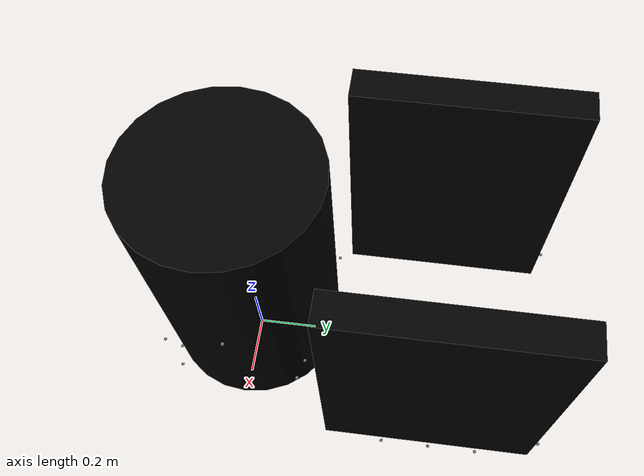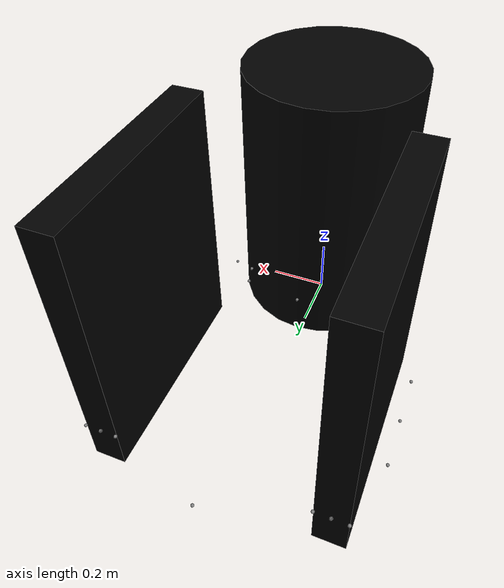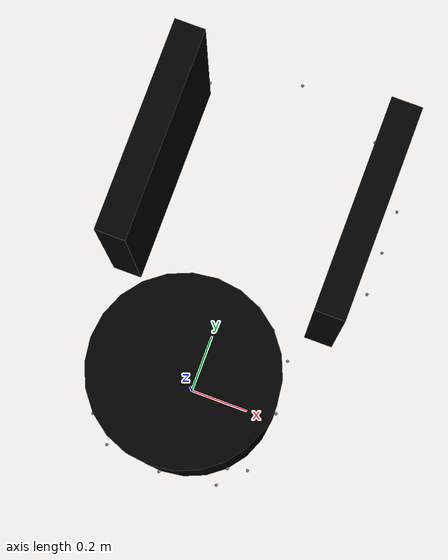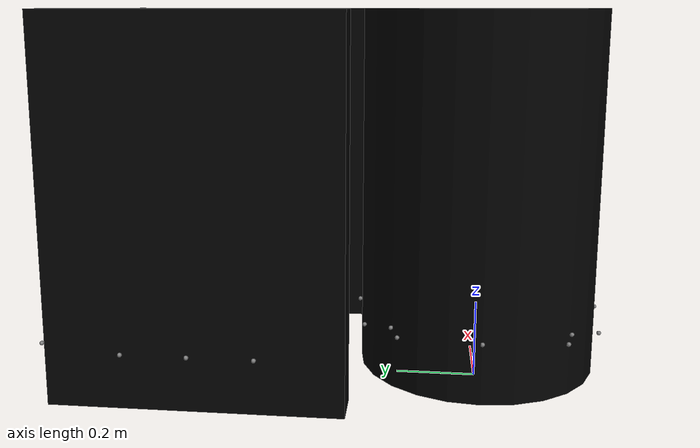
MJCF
<mujoco model="pr2_model">
    <worldbody name="base">
        <body name="pr2" pos="0 0 0.5">
            <joint axis="1 0 0" name="robot_x" type="slide" pos="0 0 0" />
            <joint axis="0 1 0" name="robot_y" type="slide" pos="0 0 0" />
            <site name="body_1" pos="0.3 0 0" zaxis="1 0 0" />
            <site name="body_2" pos="0.276 0.195 -0.3" zaxis="0.924 0.0585 0" />
            <site name="body_3" pos="0.212 0.212 -0.3" zaxis="0.707 0.707 0" />
            <site name="body_4" pos="0.195 0.276 -0.3" zaxis="0.0585 0.924 0" />

            <site name="body_5" pos="0 0.3 -0.3" zaxis="0 1 0"/>
            <site name="body_6" pos="-0.195 0.276 -0.30" zaxis="-0.0585 0.924 0"/>
            <site name="body_7" pos="-0.212 0.212 -0.30" zaxis="-0.707 0.707 0"/>
            <site name="body_8" pos="-0.276 0.195 -0.30" zaxis="-0.924 0.0585 0"/>

            <site name="body_9" pos="-0.3 0 -0.3" zaxis="-1 0 0"/>
            <site name="body_10" pos="-0.276 -0.195 -0.30" zaxis="-0.924 -0.0585 0"/>
            <site name="body_11" pos="-0.212 -0.212 -0.30" zaxis="-0.707 -0.707 0"/>
            <site name="body_12" pos="-0.195 -0.276 -0.30" zaxis="-0.0585 -0.924 0"/>

            <site name="body_13" pos="0 -0.3 -0.3" zaxis="0 -1 0"/>
            <site name="body_14" pos="0.195 -0.276 -0.3" zaxis="0.0585 -0.924 0"/>
            <site name="body_15" pos="0.212 -0.212 -0.3" zaxis="0.707 -0.707 0"/>
            <site name="body_16" pos="0.276 -0.195 -0.3" zaxis="0.924 -0.0585 0"/>

            <site name="body_17" pos="0 1.1 -0.3" zaxis="0 1 0"/>

            <geom name="pr2" type="cylinder" size="0.295 0.45" mass="5" rgba="0 0 0 1"/>
            <joint axis="0 0 1" name="robot_theta" type="hinge" pos="0 0 0" limited="false"/>
            <body name="right_finger" pos="-0.35 0.65 0" euler="0 0 -0.05">
                <site name="rf_1" pos="0. 0.35 -0.3" zaxis="0 1 0"/>
                <site name="rf_2" pos="-0.05 0.35 -0.3" zaxis="-1 1 0"/>
                <site name="rf_3" pos="-0.1 0.15 -0.3" zaxis="-1 0 0"/>
                <site name="rf_4" pos="-0.1 -0.15 -0.3" zaxis="-1 0 0"/>
                <site name="rf_5" pos="0.05 0.35 -0.3" zaxis="1 1 0"/>
                <site name="rf_6" pos="-0.1 0 -0.3" zaxis="-1 0 0"/>
                <site name="rf_7" pos="0 0.35 -0.3" zaxis="1 2 0"/>
                <joint name="right_finger_joint" axis="1 0 0" limited="true" range="-0.1 0.1" type="slide" solreflimit="0.02 0.25" solimplimit="0.99 1. 0.0001" pos="0 0 0" margin="0.02" />
                <geom pos="0 0 0" size="0.05 0.345 0.45" type="box" mass="1" friction="1.9 0.95 0.0005" rgba="0 0 0 1"/>
            </body>
            <body name="left_finger" pos="0.35 0.65 0" euler="0 0 0.05">
                <site name="lf_1" pos="0. 0.35 -0.3" zaxis="0 1 0"/>
                <site name="lf_2" pos="0.05 0.35 -0.3" zaxis="1 1 0"/>
                <site name="lf_3" pos="0.1 0.15 -0.3" zaxis="1 0 0"/>
                <site name="lf_4" pos="0.1 -0.15 -0.3" zaxis="1 0 0"/>
                <site name="lf_5" pos="-0.05 0.35 -0.3" zaxis="-1 1 0"/>
                <site name="lf_6" pos="0.1 0 -0.3" zaxis="1 0 0"/>
                <site name="lf_7" pos="0. 0.35 -0.3" zaxis="-1 2 0"/>
                <joint name="left_finger_joint" axis="-1 0 0" limited="true" range="-0.1 0.1" type="slide" solreflimit="0.02 0.25" solimplimit="0.99 1. 0.0001" pos="0 0 0" margin="0.02" />
                <geom pos="0 0 0" size="0.05 0.345 0.45" type="box" mass="1" friction="1.9 0.95 0.0005" rgba="0 0 0 1"/>
            </body>
        </body>
    </worldbody>

    <actuator>
        <velocity kv="500" joint="robot_x" name="robot_x" ctrllimited="true" ctrlrange="-20 20" />
        <velocity kv="500" joint="robot_y" name="robot_y" ctrllimited="true" ctrlrange="-20 20" />
        <velocity kv="100" joint="robot_theta" name="robot_theta" ctrllimited="true" ctrlrange="-20 20" />
        <motor gear="50" joint="left_finger_joint" name="left_grip" ctrllimited="true" ctrlrange="-50 500" />
        <motor gear="50" joint="right_finger_joint" name="right_grip" ctrllimited="true" ctrlrange="-50 500" />
    </actuator>

    <sensor>
        <rangefinder name="lidar_1" site="body_1" cutoff="2.5" />
        <rangefinder name="lidar_2" site="body_2" cutoff="2.5" />
        <rangefinder name="lidar_5" site="body_5" cutoff="2.5" />
        <rangefinder name="lidar_8" site="body_8" cutoff="2.5" />
        <rangefinder name="lidar_9" site="body_9" cutoff="2.5" />
        <rangefinder name="lidar_10" site="body_10" cutoff="2.5" />
        <rangefinder name="lidar_11" site="body_11" cutoff="2.5" />
        <rangefinder name="lidar_12" site="body_12" cutoff="2.5" />
        <rangefinder name="lidar_13" site="body_13" cutoff="2.5" />
        <rangefinder name="lidar_14" site="body_14" cutoff="2.5" />
        <rangefinder name="lidar_15" site="body_15" cutoff="2.5" />
        <rangefinder name="lidar_16" site="body_16" cutoff="2.5" />
        <rangefinder name="llidar_1" site="lf_1" cutoff="2.5" />
        <rangefinder name="llidar_2" site="lf_2" cutoff="2.5" />
        <rangefinder name="llidar_3" site="lf_3" cutoff="2.5" />
        <rangefinder name="llidar_4" site="lf_4" cutoff="2.5" />
        <rangefinder name="llidar_5" site="lf_5" cutoff="2.5" />
        <rangefinder name="llidar_6" site="lf_6" cutoff="2.5" />
        <rangefinder name="llidar_7" site="lf_7" cutoff="2.5" />
        <rangefinder name="rlidar_1" site="rf_1" cutoff="2.5" />
        <rangefinder name="rlidar_2" site="rf_2" cutoff="2.5" />
        <rangefinder name="rlidar_3" site="rf_3" cutoff="2.5" />
        <rangefinder name="rlidar_4" site="rf_4" cutoff="2.5" />
        <rangefinder name="rlidar_5" site="rf_5" cutoff="2.5" />
        <rangefinder name="rlidar_6" site="rf_6" cutoff="2.5" />
        <rangefinder name="rlidar_7" site="rf_7" cutoff="2.5" />
        <rangefinder name="far_forward" site="body_17" cutoff="2.5" />
    </sensor>
</mujoco>
